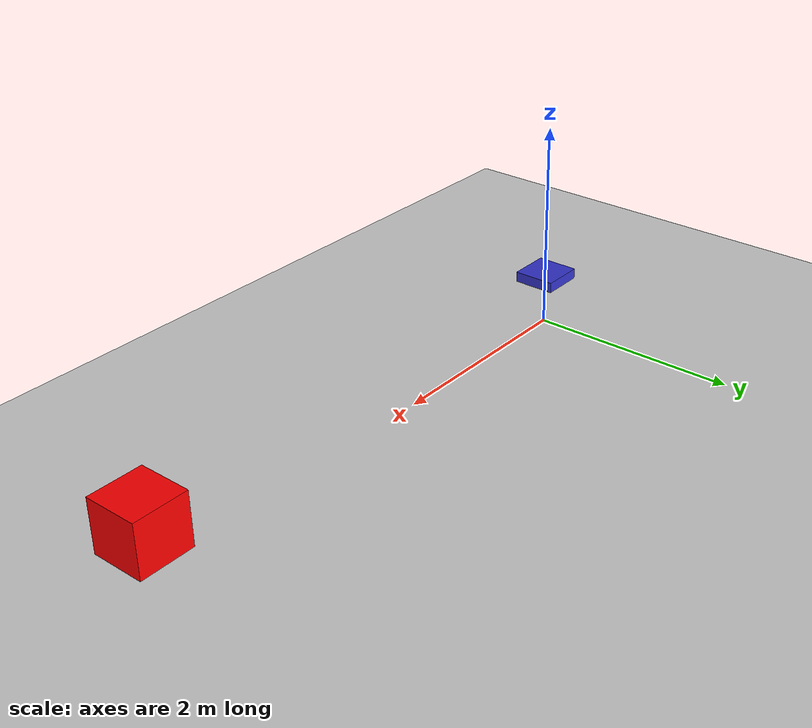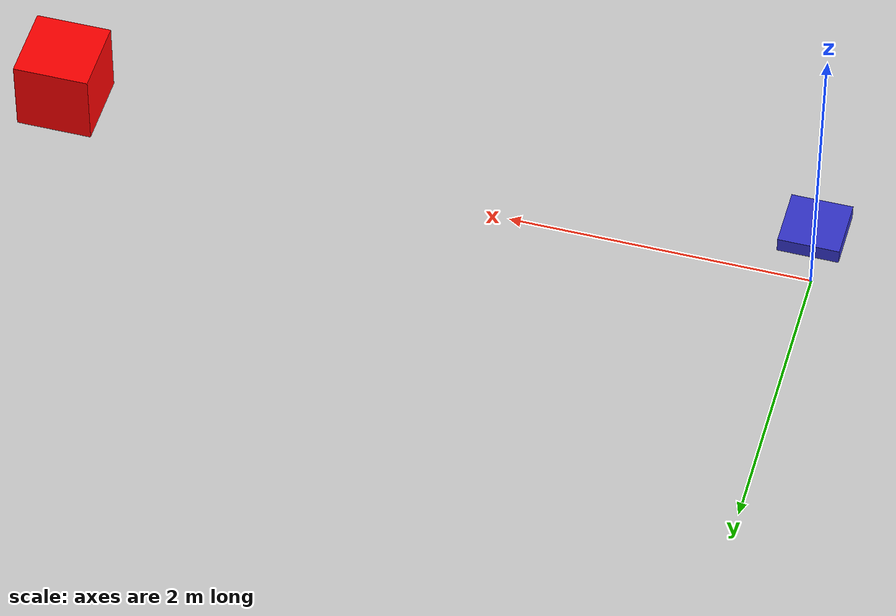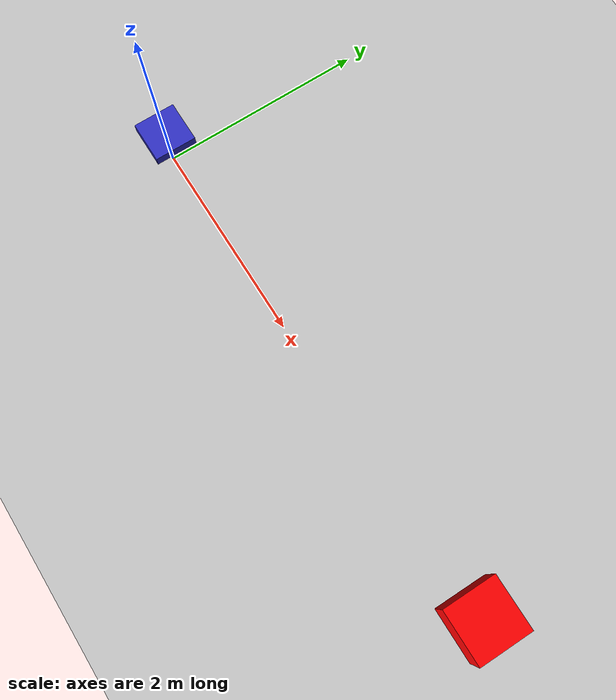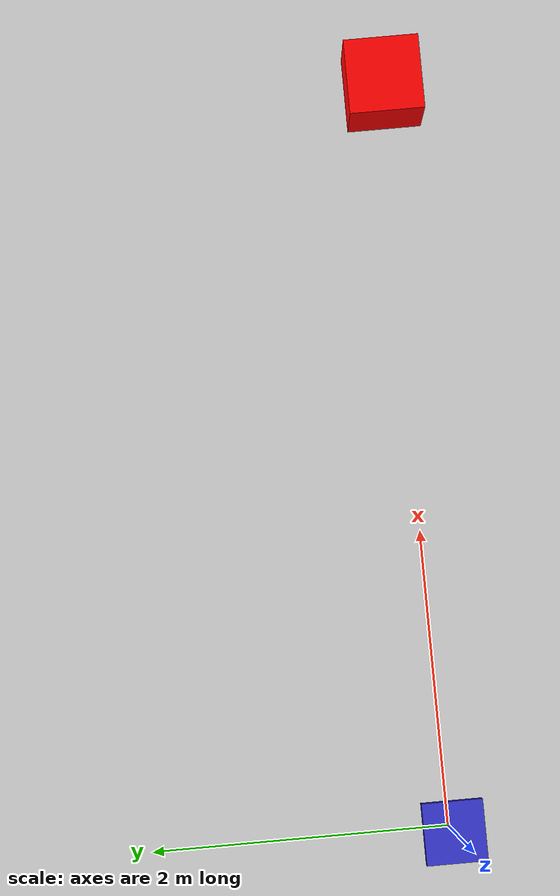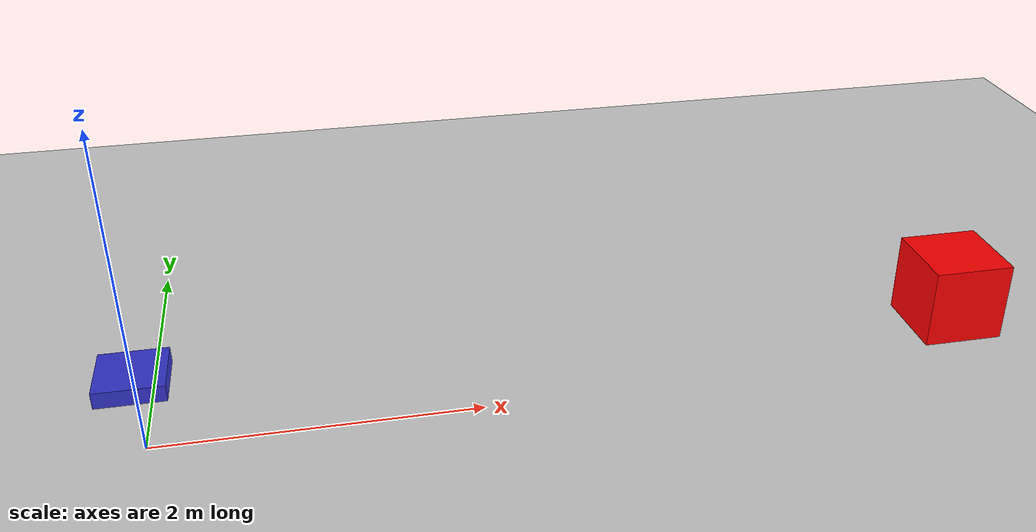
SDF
<?xml version="1.0"?>
<sdf version="1.9">
  <world name="drone_world">

    <plugin filename="gz-sim-physics-system"
            name="gz::sim::systems::Physics"/>
    <plugin filename="gz-sim-scene-broadcaster-system"
            name="gz::sim::systems::SceneBroadcaster"/>
    <plugin filename="gz-sim-user-commands-system"
            name="gz::sim::systems::UserCommands"/>
    <plugin filename="gz-sim-sensors-system"
            name="gz::sim::systems::Sensors">
      <render_engine>ogre2</render_engine>
    </plugin>

    <light type="directional" name="sun">
      <cast_shadows>true</cast_shadows>
      <pose>0 0 10 0 0 0</pose>
      <diffuse>1 1 1 1</diffuse>
      <specular>0.5 0.5 0.5 1</specular>
      <direction>-0.5 0.1 -0.9</direction>
    </light>

    <model name="ground_plane">
      <static>true</static>
      <link name="link">
        <collision name="collision">
          <geometry>
            <plane><normal>0 0 1</normal><size>100 100</size></plane>
          </geometry>
        </collision>
        <visual name="visual">
          <geometry>
            <plane><normal>0 0 1</normal><size>100 100</size></plane>
          </geometry>
          <material>
            <ambient>0.8 0.8 0.8 1</ambient>
            <diffuse>0.8 0.8 0.8 1</diffuse>
          </material>
        </visual>
      </link>
    </model>

    <include>
      <uri>model://drone</uri>
    </include>

    <include>
      <uri>model://target</uri>
    </include>

  </world>
</sdf>

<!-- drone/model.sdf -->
<sdf version="1.9">
  <model name="drone">
    <pose>0 0 0.5 0 0 0</pose>

    <link name="base_link">
      <inertial>
        <mass>1.5</mass>
        <inertia>
          <ixx>0.02</ixx><iyy>0.02</iyy><izz>0.04</izz>
          <ixy>0</ixy><ixz>0</ixz><iyz>0</iyz>
        </inertia>
      </inertial>

      <visual name="body_visual">
        <geometry>
          <box><size>0.4 0.4 0.1</size></box>
        </geometry>
        <material>
          <ambient>0.2 0.2 0.8 1</ambient>
          <diffuse>0.2 0.2 0.8 1</diffuse>
        </material>
      </visual>

      <collision name="body_collision">
        <geometry>
          <box><size>0.4 0.4 0.1</size></box>
        </geometry>
      </collision>
    </link>

    <plugin filename="gz-sim-odometry-publisher-system"
            name="gz::sim::systems::OdometryPublisher">
      <odom_frame>odom</odom_frame>
      <robot_base_frame>base_link</robot_base_frame>
      <publish_rate>50</publish_rate>
    </plugin>

    <plugin filename="gz-sim-multicopter-motor-model-system"
            name="gz::sim::systems::MulticopterMotorModel">
    </plugin>

    <plugin filename="gz-sim-multicopter-control-system"
            name="gz::sim::systems::MulticopterVelocityControl">
      <robotNamespace>drone</robotNamespace>
      <commandSubTopic>cmd_vel</commandSubTopic>
      <enableSubTopic>enable</enableSubTopic>
      <comLinkName>base_link</comLinkName>
      <velocityGain>2.5 2.5 2.5</velocityGain>
      <attitudeGain>2 3 0.15</attitudeGain>
      <angularRateGain>0.4 0.52 0.18</angularRateGain>
      <maximumLinearAcceleration>2 2 2</maximumLinearAcceleration>
    </plugin>

  </model>
</sdf>

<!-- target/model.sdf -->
<sdf version="1.9">
  <model name="target">
    <pose>5 0 0.5 0 0 0</pose>
    <static>true</static>

    <link name="target_link">
      <visual name="target_visual">
        <geometry>
          <box><size>0.5 0.5 0.5</size></box>
        </geometry>
        <material>
          <ambient>1 0 0 1</ambient>
          <diffuse>1 0 0 1</diffuse>
        </material>
      </visual>

      <collision name="target_collision">
        <geometry>
          <box><size>0.5 0.5 0.5</size></box>
        </geometry>
      </collision>
    </link>

  </model>
</sdf>
